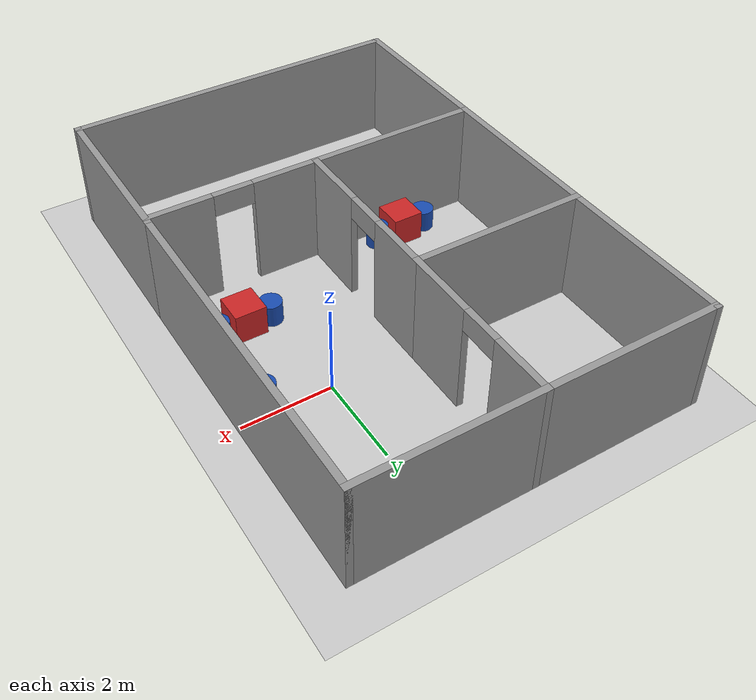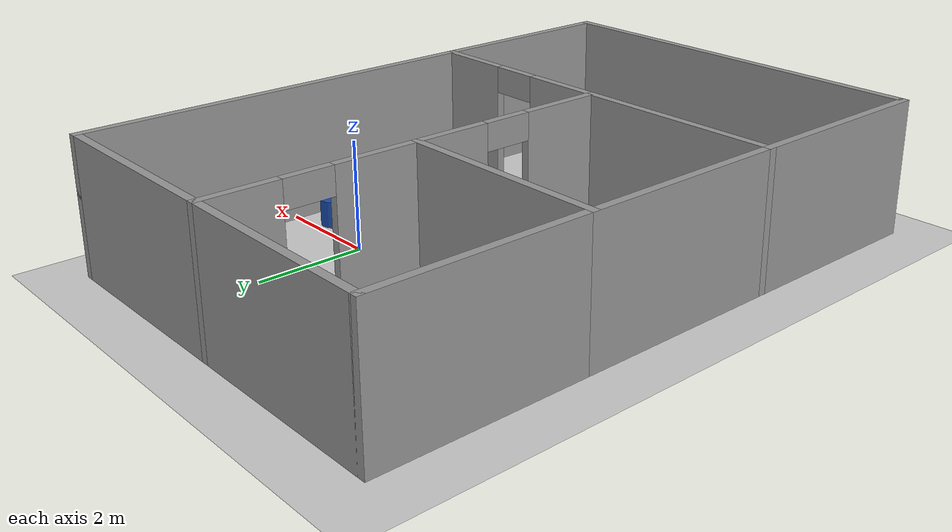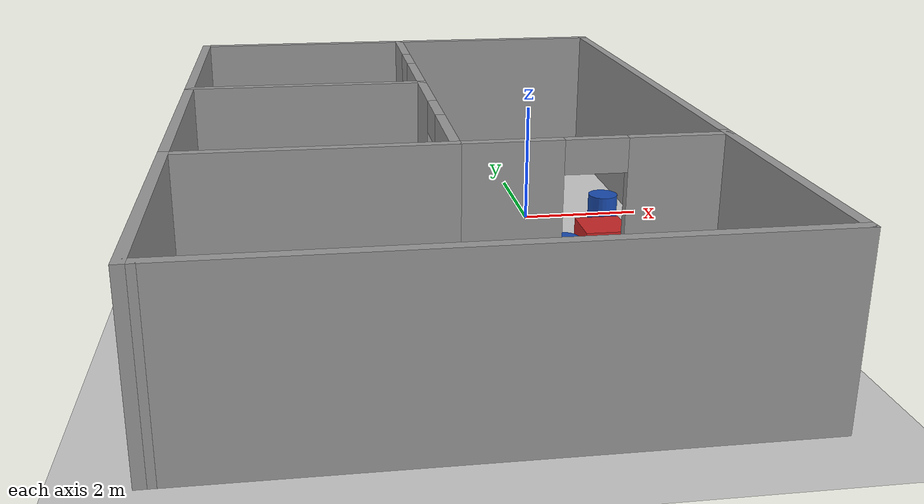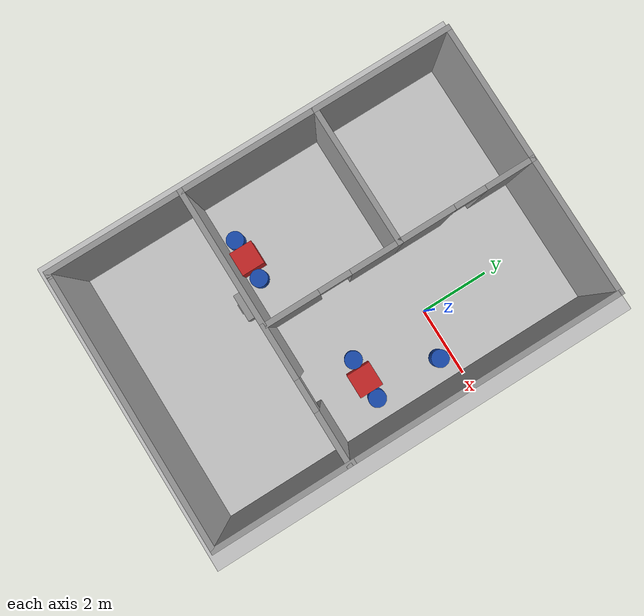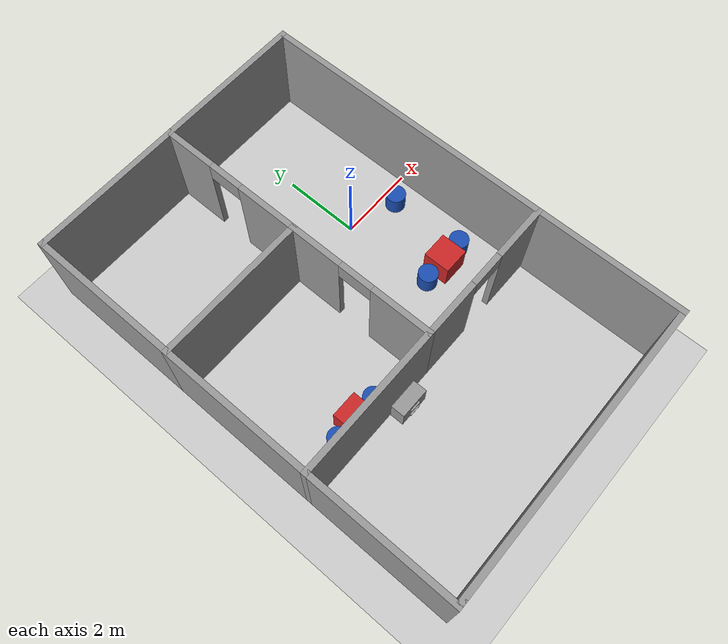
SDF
<sdf version="1.7">
 <world name="default">
  <model name="ground_plane">
   <static>1</static>
   <link name="link">
    <collision name="collision">
     <geometry><plane><normal>0 0 1</normal><size>100 100</size></plane></geometry>
     <surface>
      <contact><collide_bitmask>65535</collide_bitmask></contact>
      <friction><ode><mu>100</mu><mu2>50</mu2></ode></friction>
     </surface>
    </collision>
    <visual name="visual">
     <cast_shadows>0</cast_shadows>
     <geometry><plane><normal>0 0 1</normal><size>100 100</size></plane></geometry>
     <material>
      <script><uri>file://media/materials/scripts/gazebo.material</uri><name>Gazebo/Grey</name></script>
     </material>
    </visual>
   </link>
  </model>
  <model name="Room">
   <pose>0.816446 -1.80103 0 0 -0 0</pose>
   <link name="Wall_41">
    <collision name="Wall_41_Collision">
     <geometry><box><size>4 0.15 2.5</size></box></geometry>
     <pose>0 0 1.25 0 -0 0</pose>
    </collision>
    <visual name="Wall_41_Visual">
     <pose>0 0 1.25 0 -0 0</pose>
     <geometry><box><size>4 0.15 2.5</size></box></geometry>
     <material>
      <script><uri>file://media/materials/scripts/gazebo.material</uri><name>Gazebo/Grey</name></script>
      <ambient>1 1 1 1</ambient>
     </material>
     <meta><layer>0</layer></meta>
    </visual>
    <pose>-4.5935 1.875 0 0 -0 0</pose>
   </link>
   <link name="Wall_42">
    <pose>-2.6685 -0.05 0 0 -0 -1.5708</pose>
    <visual name="Wall_42_Visual_0">
     <pose>-1.26796 0 1.25 0 -0 0</pose>
     <geometry><box><size>1.46408 0.15 2.5</size></box></geometry>
     <material>
      <script><uri>file://media/materials/scripts/gazebo.material</uri><name>Gazebo/Grey</name></script>
      <ambient>1 1 1 1</ambient>
     </material>
     <meta><layer>0</layer></meta>
    </visual>
    <collision name="Wall_42_Collision_0">
     <geometry><box><size>1.46408 0.15 2.5</size></box></geometry>
     <pose>-1.26796 0 1.25 0 -0 0</pose>
    </collision>
    <visual name="Wall_42_Visual_1">
     <pose>1.18204 0 1.25 0 -0 0</pose>
     <geometry><box><size>1.63592 0.15 2.5</size></box></geometry>
     <material>
      <script><uri>file://media/materials/scripts/gazebo.material</uri><name>Gazebo/Grey</name></script>
      <ambient>1 1 1 1</ambient>
     </material>
     <meta><layer>0</layer></meta>
    </visual>
    <collision name="Wall_42_Collision_1">
     <geometry><box><size>1.63592 0.15 2.5</size></box></geometry>
     <pose>1.18204 0 1.25 0 -0 0</pose>
    </collision>
    <visual name="Wall_42_Visual_2">
     <pose>-0.085917 0 2.25 0 -0 0</pose>
     <geometry><box><size>0.9 0.15 0.5</size></box></geometry>
     <material>
      <script><uri>file://media/materials/scripts/gazebo.material</uri><name>Gazebo/Grey</name></script>
      <ambient>1 1 1 1</ambient>
     </material>
     <meta><layer>0</layer></meta>
    </visual>
    <collision name="Wall_42_Collision_2">
     <geometry><box><size>0.9 0.15 0.5</size></box></geometry>
     <pose>-0.085917 0 2.25 0 -0 0</pose>
    </collision>
   </link>
   <link name="Wall_43">
    <collision name="Wall_43_Collision">
     <geometry><box><size>4 0.15 2.5</size></box></geometry>
     <pose>0 0 1.25 0 -0 0</pose>
    </collision>
    <visual name="Wall_43_Visual">
     <pose>0 0 1.25 0 -0 0</pose>
     <geometry><box><size>4 0.15 2.5</size></box></geometry>
     <material>
      <script><uri>file://media/materials/scripts/gazebo.material</uri><name>Gazebo/Grey</name></script>
      <ambient>1 1 1 1</ambient>
     </material>
     <meta><layer>0</layer></meta>
    </visual>
    <pose>-4.5935 -1.975 0 0 -0 3.14159</pose>
   </link>
   <link name="Wall_44">
    <collision name="Wall_44_Collision">
     <geometry><box><size>4 0.15 2.5</size></box></geometry>
     <pose>0 0 1.25 0 -0 0</pose>
    </collision>
    <visual name="Wall_44_Visual">
     <pose>0 0 1.25 0 -0 0</pose>
     <geometry><box><size>4 0.15 2.5</size></box></geometry>
     <material>
      <script><uri>file://media/materials/scripts/gazebo.material</uri><name>Gazebo/Grey</name></script>
      <ambient>1 1 1 1</ambient>
     </material>
     <meta><layer>0</layer></meta>
    </visual>
    <pose>-6.5185 -0.05 0 0 -0 1.5708</pose>
   </link>
   <link name="Wall_49">
    <pose>-0.743497 -1.975 0 0 -0 3.14159</pose>
    <visual name="Wall_49_Visual_0">
     <pose>-1.23831 0 1.25 0 -0 0</pose>
     <geometry><box><size>1.52338 0.15 2.5</size></box></geometry>
     <material>
      <script><uri>file://media/materials/scripts/gazebo.material</uri><name>Gazebo/Grey</name></script>
      <ambient>1 1 1 1</ambient>
     </material>
     <meta><layer>0</layer></meta>
    </visual>
    <collision name="Wall_49_Collision_0">
     <geometry><box><size>1.52338 0.15 2.5</size></box></geometry>
     <pose>-1.23831 0 1.25 0 -0 0</pose>
    </collision>
    <visual name="Wall_49_Visual_1">
     <pose>1.21169 0 1.25 0 -0 0</pose>
     <geometry><box><size>1.57662 0.15 2.5</size></box></geometry>
     <material>
      <script><uri>file://media/materials/scripts/gazebo.material</uri><name>Gazebo/Grey</name></script>
      <ambient>1 1 1 1</ambient>
     </material>
     <meta><layer>0</layer></meta>
    </visual>
    <collision name="Wall_49_Collision_1">
     <geometry><box><size>1.57662 0.15 2.5</size></box></geometry>
     <pose>1.21169 0 1.25 0 -0 0</pose>
    </collision>
    <visual name="Wall_49_Visual_2">
     <pose>-0.026623 0 2.25 0 -0 0</pose>
     <geometry><box><size>0.9 0.15 0.5</size></box></geometry>
     <material>
      <script><uri>file://media/materials/scripts/gazebo.material</uri><name>Gazebo/Grey</name></script>
      <ambient>1 1 1 1</ambient>
     </material>
     <meta><layer>0</layer></meta>
    </visual>
    <collision name="Wall_49_Collision_2">
     <geometry><box><size>0.9 0.15 0.5</size></box></geometry>
     <pose>-0.026623 0 2.25 0 -0 0</pose>
    </collision>
   </link>
   <link name="Wall_51">
    <collision name="Wall_51_Collision">
     <geometry><box><size>4 0.15 2.5</size></box></geometry>
     <pose>0 0 1.25 0 -0 0</pose>
    </collision>
    <visual name="Wall_51_Visual">
     <pose>0 0 1.25 0 -0 0</pose>
     <geometry><box><size>4 0.15 2.5</size></box></geometry>
     <material>
      <script><uri>file://media/materials/scripts/gazebo.material</uri><name>Gazebo/Grey</name></script>
      <ambient>1 1 1 1</ambient>
     </material>
     <meta><layer>0</layer></meta>
    </visual>
    <pose>-6.5185 3.8 0 0 -0 1.5708</pose>
   </link>
   <link name="Wall_52">
    <collision name="Wall_52_Collision">
     <geometry><box><size>4 0.15 2.5</size></box></geometry>
     <pose>0 0 1.25 0 -0 0</pose>
    </collision>
    <visual name="Wall_52_Visual">
     <pose>0 0 1.25 0 -0 0</pose>
     <geometry><box><size>4 0.15 2.5</size></box></geometry>
     <material>
      <script><uri>file://media/materials/scripts/gazebo.material</uri><name>Gazebo/Grey</name></script>
      <ambient>1 1 1 1</ambient>
     </material>
     <meta><layer>0</layer></meta>
    </visual>
    <pose>-4.5935 5.725 0 0 -0 0</pose>
   </link>
   <link name="Wall_53">
    <pose>-2.6685 3.8 0 0 -0 -1.5708</pose>
    <visual name="Wall_53_Visual_0">
     <pose>-1.28605 0 1.25 0 -0 0</pose>
     <geometry><box><size>1.42791 0.15 2.5</size></box></geometry>
     <material>
      <script><uri>file://media/materials/scripts/gazebo.material</uri><name>Gazebo/Grey</name></script>
      <ambient>1 1 1 1</ambient>
     </material>
     <meta><layer>0</layer></meta>
    </visual>
    <collision name="Wall_53_Collision_0">
     <geometry><box><size>1.42791 0.15 2.5</size></box></geometry>
     <pose>-1.28605 0 1.25 0 -0 0</pose>
    </collision>
    <visual name="Wall_53_Visual_1">
     <pose>1.16395 0 1.25 0 -0 0</pose>
     <geometry><box><size>1.67209 0.15 2.5</size></box></geometry>
     <material>
      <script><uri>file://media/materials/scripts/gazebo.material</uri><name>Gazebo/Grey</name></script>
      <ambient>1 1 1 1</ambient>
     </material>
     <meta><layer>0</layer></meta>
    </visual>
    <collision name="Wall_53_Collision_1">
     <geometry><box><size>1.67209 0.15 2.5</size></box></geometry>
     <pose>1.16395 0 1.25 0 -0 0</pose>
    </collision>
    <visual name="Wall_53_Visual_2">
     <pose>-0.122091 0 2.25 0 -0 0</pose>
     <geometry><box><size>0.9 0.15 0.5</size></box></geometry>
     <material>
      <script><uri>file://media/materials/scripts/gazebo.material</uri><name>Gazebo/Grey</name></script>
      <ambient>1 1 1 1</ambient>
     </material>
     <meta><layer>0</layer></meta>
    </visual>
    <collision name="Wall_53_Collision_2">
     <geometry><box><size>0.9 0.15 0.5</size></box></geometry>
     <pose>-0.122091 0 2.25 0 -0 0</pose>
    </collision>
   </link>
   <link name="Wall_61">
    <collision name="Wall_61_Collision">
     <geometry><box><size>0.15 0.15 2.5</size></box></geometry>
     <pose>0 0 1.25 0 -0 0</pose>
    </collision>
    <visual name="Wall_61_Visual">
     <pose>0 0 1.25 0 -0 0</pose>
     <geometry><box><size>0.15 0.15 2.5</size></box></geometry>
     <material>
      <script><uri>file://media/materials/scripts/gazebo.material</uri><name>Gazebo/Grey</name></script>
      <ambient>1 1 1 1</ambient>
     </material>
     <meta><layer>0</layer></meta>
    </visual>
    <pose>1.1815 5.725 0 0 -0 0</pose>
   </link>
   <link name="Wall_66">
    <collision name="Wall_66_Collision">
     <geometry><box><size>0.15 0.15 2.5</size></box></geometry>
     <pose>0 0 1.25 0 -0 0</pose>
    </collision>
    <visual name="Wall_66_Visual">
     <pose>0 0 1.25 0 -0 0</pose>
     <geometry><box><size>0.15 0.15 2.5</size></box></geometry>
     <material>
      <script><uri>file://media/materials/scripts/gazebo.material</uri><name>Gazebo/Grey</name></script>
      <ambient>1 1 1 1</ambient>
     </material>
     <meta><layer>0</layer></meta>
    </visual>
    <pose>1.1815 5.725 0 0 -0 0</pose>
   </link>
   <link name="Wall_79">
    <collision name="Wall_79_Collision">
     <geometry><box><size>4 0.15 2.5</size></box></geometry>
     <pose>0 0 1.25 0 -0 0</pose>
    </collision>
    <visual name="Wall_79_Visual">
     <pose>0 0 1.25 0 -0 0</pose>
     <geometry><box><size>4 0.15 2.5</size></box></geometry>
     <material>
      <script><uri>file://media/materials/scripts/gazebo.material</uri><name>Gazebo/Grey</name></script>
      <ambient>1 1 1 1</ambient>
     </material>
     <meta><layer>0</layer></meta>
    </visual>
    <pose>-0.743497 5.725 0 0 -0 0</pose>
   </link>
   <link name="Wall_80">
    <collision name="Wall_80_Collision">
     <geometry><box><size>7.75 0.15 2.5</size></box></geometry>
     <pose>0 0 1.25 0 -0 0</pose>
    </collision>
    <visual name="Wall_80_Visual">
     <pose>0 0 1.25 0 -0 0</pose>
     <geometry><box><size>7.75 0.15 2.5</size></box></geometry>
     <material>
      <script><uri>file://media/materials/scripts/gazebo.material</uri><name>Gazebo/Grey</name></script>
      <ambient>1 1 1 1</ambient>
     </material>
     <meta><layer>0</layer></meta>
    </visual>
    <pose>1.1815 1.925 0 0 -0 -1.5708</pose>
   </link>
   <link name="Wall_82">
    <collision name="Wall_82_Collision">
     <geometry><box><size>4 0.15 2.5</size></box></geometry>
     <pose>0 0 1.25 0 -0 0</pose>
    </collision>
    <visual name="Wall_82_Visual">
     <pose>0 0 1.25 0 -0 0</pose>
     <geometry><box><size>4 0.15 2.5</size></box></geometry>
     <material>
      <script><uri>file://media/materials/scripts/gazebo.material</uri><name>Gazebo/Grey</name></script>
      <ambient>1 1 1 1</ambient>
     </material>
     <meta><layer>0</layer></meta>
    </visual>
    <pose>1.1815 -3.8 0 0 -0 -1.5708</pose>
   </link>
   <link name="Wall_89">
    <collision name="Wall_89_Collision">
     <geometry><box><size>3.9 0.15 2.5</size></box></geometry>
     <pose>0 0 1.25 0 -0 0</pose>
    </collision>
    <visual name="Wall_89_Visual">
     <pose>0 0 1.25 0 -0 0</pose>
     <geometry><box><size>3.9 0.15 2.5</size></box></geometry>
     <material>
      <script><uri>file://media/materials/scripts/gazebo.material</uri><name>Gazebo/Grey</name></script>
      <ambient>1 1 1 1</ambient>
     </material>
     <meta><layer>0</layer></meta>
    </visual>
    <pose>-6.5185 -3.85 0 0 -0 -1.5708</pose>
   </link>
   <link name="Wall_91">
    <collision name="Wall_91_Collision">
     <geometry><box><size>7.75 0.15 2.5</size></box></geometry>
     <pose>0 0 1.25 0 -0 0</pose>
    </collision>
    <visual name="Wall_91_Visual">
     <pose>0 0 1.25 0 -0 0</pose>
     <geometry><box><size>7.75 0.15 2.5</size></box></geometry>
     <material>
      <script><uri>file://media/materials/scripts/gazebo.material</uri><name>Gazebo/Grey</name></script>
      <ambient>1 1 1 1</ambient>
     </material>
     <meta><layer>0</layer></meta>
    </visual>
    <pose>-2.6185 -5.725 0 0 -0 3.14159</pose>
   </link>
   <link name="Wall_92">
    <collision name="Wall_92_Collision">
     <geometry><box><size>0.15 0.15 2.5</size></box></geometry>
     <pose>0 0 1.25 0 -0 0</pose>
    </collision>
    <visual name="Wall_92_Visual">
     <pose>0 0 1.25 0 -0 0</pose>
     <geometry><box><size>0.15 0.15 2.5</size></box></geometry>
     <material>
      <script><uri>file://media/materials/scripts/gazebo.material</uri><name>Gazebo/Grey</name></script>
      <ambient>1 1 1 1</ambient>
     </material>
     <meta><layer>0</layer></meta>
    </visual>
    <pose>-6.4185 -5.725 0 0 -0 0</pose>
   </link>
   <static>1</static>
  </model>
  <model name="Card_table">
   <link name="link">
    <inertial>
     <mass>10</mass>
     <inertia><ixx>1.66667</ixx><ixy>0</ixy><ixz>0</ixz><iyy>1.66667</iyy><iyz>0</iyz><izz>1.66667</izz></inertia>
    </inertial>
    <visual name="visual">
     <geometry><box><size>0.7 0.7 0.7</size></box></geometry>
     <material>
      <script><name>Gazebo/Red</name><uri>file://media/materials/scripts/gazebo.material</uri></script>
      <shader type="vertex"><normal_map>__default__</normal_map></shader>
      <ambient>1 0 0 1</ambient>
      <diffuse>0.9 0.7 0.7 1</diffuse>
      <specular>0.01 0.01 0.01 1</specular>
      <emissive>0 0 0 1</emissive>
     </material>
    </visual>
    <collision name="collision">
     <geometry><box><size>0.7 0.7 0.7</size></box></geometry>
     <surface>
      <friction>
       <ode><mu>1</mu><mu2>1</mu2><fdir1>0 0 0</fdir1><slip1>0</slip1><slip2>0</slip2></ode>
       <torsional>
        <coefficient>1</coefficient>
        <patch_radius>0</patch_radius>
        <surface_radius>0</surface_radius>
        <use_patch_radius>1</use_patch_radius>
        <ode><slip>0</slip></ode>
       </torsional>
      </friction>
      <bounce><restitution_coefficient>0</restitution_coefficient><threshold>1e+06</threshold></bounce>
      <contact>
       <collide_without_contact>0</collide_without_contact>
       <collide_without_contact_bitmask>1</collide_without_contact_bitmask>
       <collide_bitmask>1</collide_bitmask>
       <ode>
        <soft_cfm>0</soft_cfm>
        <soft_erp>0.2</soft_erp>
        <kp>1e+13</kp>
        <kd>1</kd>
        <max_vel>0.01</max_vel>
        <min_depth>0</min_depth>
       </ode>
       <bullet>
        <split_impulse>1</split_impulse>
        <split_impulse_penetration_threshold>-0.01</split_impulse_penetration_threshold>
        <soft_cfm>0</soft_cfm>
        <soft_erp>0.2</soft_erp>
        <kp>1e+13</kp>
        <kd>1</kd>
       </bullet>
      </contact>
     </surface>
    </collision>
   </link>
   <static>1</static>
   <pose>-3.75289 -3.37198 0.35 0 -0 0</pose>
  </model>
  <model name="chair2">
   <link name="link">
    <inertial>
     <mass>1</mass>
     <inertia><ixx>0.145833</ixx><ixy>0</ixy><ixz>0</ixz><iyy>0.145833</iyy><iyz>0</iyz><izz>0.125</izz></inertia>
    </inertial>
    <visual name="visual">
     <geometry><cylinder><radius>0.25</radius><length>0.5</length></cylinder></geometry>
     <material>
      <script><name>Gazebo/Grey</name><uri>file://media/materials/scripts/gazebo.material</uri></script>
      <shader type="pixel"><normal_map>__default__</normal_map></shader>
      <ambient>0.1 0.3 0.7 1</ambient>
      <diffuse>0.7 0.7 0.7 1</diffuse>
      <specular>0.01 0.01 0.01 1</specular>
      <emissive>0 0 0 1</emissive>
     </material>
    </visual>
    <collision name="collision">
     <geometry><cylinder><radius>0.25</radius><length>0.5</length></cylinder></geometry>
     <surface>
      <friction>
       <ode><mu>1</mu><mu2>1</mu2><fdir1>0 0 0</fdir1><slip1>0</slip1><slip2>0</slip2></ode>
       <torsional>
        <coefficient>1</coefficient>
        <patch_radius>0</patch_radius>
        <surface_radius>0</surface_radius>
        <use_patch_radius>1</use_patch_radius>
        <ode><slip>0</slip></ode>
       </torsional>
      </friction>
      <bounce><restitution_coefficient>0</restitution_coefficient><threshold>1e+06</threshold></bounce>
      <contact>
       <collide_without_contact>0</collide_without_contact>
       <collide_without_contact_bitmask>1</collide_without_contact_bitmask>
       <collide_bitmask>1</collide_bitmask>
       <ode>
        <soft_cfm>0</soft_cfm>
        <soft_erp>0.2</soft_erp>
        <kp>1e+13</kp>
        <kd>1</kd>
        <max_vel>0.01</max_vel>
        <min_depth>0</min_depth>
       </ode>
       <bullet>
        <split_impulse>1</split_impulse>
        <split_impulse_penetration_threshold>-0.01</split_impulse_penetration_threshold>
        <soft_cfm>0</soft_cfm>
        <soft_erp>0.2</soft_erp>
        <kp>1e+13</kp>
        <kd>1</kd>
       </bullet>
      </contact>
     </surface>
    </collision>
   </link>
   <static>1</static>
   <pose>-4.37303 -3.38534 0.25 0 -0 0</pose>
  </model>
  <model name="chair2_clone_0">
   <link name="link">
    <inertial>
     <mass>1</mass>
     <inertia><ixx>0.145833</ixx><ixy>0</ixy><ixz>0</ixz><iyy>0.145833</iyy><iyz>0</iyz><izz>0.125</izz></inertia>
    </inertial>
    <visual name="visual">
     <geometry><cylinder><radius>0.25</radius><length>0.5</length></cylinder></geometry>
     <material>
      <script><name>Gazebo/Grey</name><uri>file://media/materials/scripts/gazebo.material</uri></script>
      <shader type="pixel"><normal_map>__default__</normal_map></shader>
      <ambient>0.1 0.3 0.7 1</ambient>
      <diffuse>0.7 0.7 0.7 1</diffuse>
      <specular>0.01 0.01 0.01 1</specular>
      <emissive>0 0 0 1</emissive>
     </material>
    </visual>
    <collision name="collision">
     <geometry><cylinder><radius>0.25</radius><length>0.5</length></cylinder></geometry>
     <surface>
      <friction>
       <ode><mu>1</mu><mu2>1</mu2><fdir1>0 0 0</fdir1><slip1>0</slip1><slip2>0</slip2></ode>
       <torsional>
        <coefficient>1</coefficient>
        <patch_radius>0</patch_radius>
        <surface_radius>0</surface_radius>
        <use_patch_radius>1</use_patch_radius>
        <ode><slip>0</slip></ode>
       </torsional>
      </friction>
      <bounce><restitution_coefficient>0</restitution_coefficient><threshold>1e+06</threshold></bounce>
      <contact>
       <collide_without_contact>0</collide_without_contact>
       <collide_without_contact_bitmask>1</collide_without_contact_bitmask>
       <collide_bitmask>1</collide_bitmask>
       <ode>
        <soft_cfm>0</soft_cfm>
        <soft_erp>0.2</soft_erp>
        <kp>1e+13</kp>
        <kd>1</kd>
        <max_vel>0.01</max_vel>
        <min_depth>0</min_depth>
       </ode>
       <bullet>
        <split_impulse>1</split_impulse>
        <split_impulse_penetration_threshold>-0.01</split_impulse_penetration_threshold>
        <soft_cfm>0</soft_cfm>
        <soft_erp>0.2</soft_erp>
        <kp>1e+13</kp>
        <kd>1</kd>
       </bullet>
      </contact>
     </surface>
    </collision>
   </link>
   <static>1</static>
   <pose>-3.14555 -3.37656 0.25 0 -0 0</pose>
  </model>
  <model name="chair2_clone_1_clone_clone">
   <link name="link">
    <inertial>
     <mass>1</mass>
     <inertia><ixx>0.145833</ixx><ixy>0</ixy><ixz>0</ixz><iyy>0.145833</iyy><iyz>0</iyz><izz>0.125</izz></inertia>
    </inertial>
    <visual name="visual">
     <geometry><cylinder><radius>0.25</radius><length>0.5</length></cylinder></geometry>
     <material>
      <script><name>Gazebo/Grey</name><uri>file://media/materials/scripts/gazebo.material</uri></script>
      <shader type="pixel"><normal_map>__default__</normal_map></shader>
      <ambient>0.1 0.3 0.7 1</ambient>
      <diffuse>0.7 0.7 0.7 1</diffuse>
      <specular>0.01 0.01 0.01 1</specular>
      <emissive>0 0 0 1</emissive>
     </material>
    </visual>
    <collision name="collision">
     <geometry><cylinder><radius>0.25</radius><length>0.5</length></cylinder></geometry>
     <surface>
      <friction>
       <ode><mu>1</mu><mu2>1</mu2><fdir1>0 0 0</fdir1><slip1>0</slip1><slip2>0</slip2></ode>
       <torsional>
        <coefficient>1</coefficient>
        <patch_radius>0</patch_radius>
        <surface_radius>0</surface_radius>
        <use_patch_radius>1</use_patch_radius>
        <ode><slip>0</slip></ode>
       </torsional>
      </friction>
      <bounce><restitution_coefficient>0</restitution_coefficient><threshold>1e+06</threshold></bounce>
      <contact>
       <collide_without_contact>0</collide_without_contact>
       <collide_without_contact_bitmask>1</collide_without_contact_bitmask>
       <collide_bitmask>1</collide_bitmask>
       <ode>
        <soft_cfm>0</soft_cfm>
        <soft_erp>0.2</soft_erp>
        <kp>1e+13</kp>
        <kd>1</kd>
        <max_vel>0.01</max_vel>
        <min_depth>0</min_depth>
       </ode>
       <bullet>
        <split_impulse>1</split_impulse>
        <split_impulse_penetration_threshold>-0.01</split_impulse_penetration_threshold>
        <soft_cfm>0</soft_cfm>
        <soft_erp>0.2</soft_erp>
        <kp>1e+13</kp>
        <kd>1</kd>
       </bullet>
      </contact>
     </surface>
    </collision>
   </link>
   <static>1</static>
   <pose>1.28512 -0.375706 0.25 0 -0 0</pose>
  </model>
  <model name="Card_table_clone_clone_1">
   <link name="link">
    <inertial>
     <mass>10</mass>
     <inertia><ixx>1.66667</ixx><ixy>0</ixy><ixz>0</ixz><iyy>1.66667</iyy><iyz>0</iyz><izz>1.66667</izz></inertia>
    </inertial>
    <visual name="visual">
     <geometry><box><size>0.7 0.7 0.7</size></box></geometry>
     <material>
      <script><name>Gazebo/Red</name><uri>file://media/materials/scripts/gazebo.material</uri></script>
      <shader type="vertex"><normal_map>__default__</normal_map></shader>
      <ambient>1 0 0 1</ambient>
      <diffuse>0.9 0.7 0.7 1</diffuse>
      <specular>0.01 0.01 0.01 1</specular>
      <emissive>0 0 0 1</emissive>
     </material>
    </visual>
    <collision name="collision">
     <geometry><box><size>0.7 0.7 0.7</size></box></geometry>
     <surface>
      <friction>
       <ode><mu>1</mu><mu2>1</mu2><fdir1>0 0 0</fdir1><slip1>0</slip1><slip2>0</slip2></ode>
       <torsional>
        <coefficient>1</coefficient>
        <patch_radius>0</patch_radius>
        <surface_radius>0</surface_radius>
        <use_patch_radius>1</use_patch_radius>
        <ode><slip>0</slip></ode>
       </torsional>
      </friction>
      <bounce><restitution_coefficient>0</restitution_coefficient><threshold>1e+06</threshold></bounce>
      <contact>
       <collide_without_contact>0</collide_without_contact>
       <collide_without_contact_bitmask>1</collide_without_contact_bitmask>
       <collide_bitmask>1</collide_bitmask>
       <ode>
        <soft_cfm>0</soft_cfm>
        <soft_erp>0.2</soft_erp>
        <kp>1e+13</kp>
        <kd>1</kd>
        <max_vel>0.01</max_vel>
        <min_depth>0</min_depth>
       </ode>
       <bullet>
        <split_impulse>1</split_impulse>
        <split_impulse_penetration_threshold>-0.01</split_impulse_penetration_threshold>
        <soft_cfm>0</soft_cfm>
        <soft_erp>0.2</soft_erp>
        <kp>1e+13</kp>
        <kd>1</kd>
       </bullet>
      </contact>
     </surface>
    </collision>
   </link>
   <static>1</static>
   <pose>0.679929 -2.40022 0.35 0 -0 0</pose>
  </model>
  <model name="chair2_clone_1_clone_clone_clone_0">
   <link name="link">
    <inertial>
     <mass>1</mass>
     <inertia><ixx>0.145833</ixx><ixy>0</ixy><ixz>0</ixz><iyy>0.145833</iyy><iyz>0</iyz><izz>0.125</izz></inertia>
    </inertial>
    <visual name="visual">
     <geometry><cylinder><radius>0.25</radius><length>0.5</length></cylinder></geometry>
     <material>
      <script><name>Gazebo/Grey</name><uri>file://media/materials/scripts/gazebo.material</uri></script>
      <shader type="pixel"><normal_map>__default__</normal_map></shader>
      <ambient>0.1 0.3 0.7 1</ambient>
      <diffuse>0.7 0.7 0.7 1</diffuse>
      <specular>0.01 0.01 0.01 1</specular>
      <emissive>0 0 0 1</emissive>
     </material>
    </visual>
    <collision name="collision">
     <geometry><cylinder><radius>0.25</radius><length>0.5</length></cylinder></geometry>
     <surface>
      <friction>
       <ode><mu>1</mu><mu2>1</mu2><fdir1>0 0 0</fdir1><slip1>0</slip1><slip2>0</slip2></ode>
       <torsional>
        <coefficient>1</coefficient>
        <patch_radius>0</patch_radius>
        <surface_radius>0</surface_radius>
        <use_patch_radius>1</use_patch_radius>
        <ode><slip>0</slip></ode>
       </torsional>
      </friction>
      <bounce><restitution_coefficient>0</restitution_coefficient><threshold>1e+06</threshold></bounce>
      <contact>
       <collide_without_contact>0</collide_without_contact>
       <collide_without_contact_bitmask>1</collide_without_contact_bitmask>
       <collide_bitmask>1</collide_bitmask>
       <ode>
        <soft_cfm>0</soft_cfm>
        <soft_erp>0.2</soft_erp>
        <kp>1e+13</kp>
        <kd>1</kd>
        <max_vel>0.01</max_vel>
        <min_depth>0</min_depth>
       </ode>
       <bullet>
        <split_impulse>1</split_impulse>
        <split_impulse_penetration_threshold>-0.01</split_impulse_penetration_threshold>
        <soft_cfm>0</soft_cfm>
        <soft_erp>0.2</soft_erp>
        <kp>1e+13</kp>
        <kd>1</kd>
       </bullet>
      </contact>
     </surface>
    </collision>
   </link>
   <static>1</static>
   <pose>0.083371 -2.3746 0.25 0 -0 0</pose>
  </model>
  <model name="Drawer_clone">
   <link name="link">
    <inertial>
     <mass>1</mass>
     <inertia>
      <ixx>0.166667</ixx>
      <ixy>0</ixy>
      <ixz>0</ixz>
      <iyy>0.166667</iyy>
      <iyz>0</iyz>
      <izz>0.166667</izz>
     </inertia>
    </inertial>
    <visual name="visual">
     <geometry><box><size>0.4 0.8 0.6</size></box></geometry>
     <material>
      <script><name>Gazebo/Grey</name><uri>file://media/materials/scripts/gazebo.material</uri></script>
      <shader type="pixel"><normal_map>__default__</normal_map></shader>
      <ambient>0.3 0.3 0.3 1</ambient>
      <diffuse>1 1 1 1</diffuse>
      <specular>0.01 0.01 0.01 1</specular>
      <emissive>0 0 0 1</emissive>
     </material>
    </visual>
    <collision name="collision">
     <geometry><box><size>0.4 0.8 0.6</size></box></geometry>
     <surface>
      <friction>
       <ode><mu>1</mu><mu2>1</mu2><fdir1>0 0 0</fdir1><slip1>0</slip1><slip2>0</slip2></ode>
       <torsional>
        <coefficient>1</coefficient>
        <patch_radius>0</patch_radius>
        <surface_radius>0</surface_radius>
        <use_patch_radius>1</use_patch_radius>
        <ode><slip>0</slip></ode>
       </torsional>
      </friction>
      <bounce><restitution_coefficient>0</restitution_coefficient><threshold>1e+06</threshold></bounce>
      <contact>
       <collide_without_contact>0</collide_without_contact>
       <collide_without_contact_bitmask>1</collide_without_contact_bitmask>
       <collide_bitmask>1</collide_bitmask>
       <ode>
        <soft_cfm>0</soft_cfm>
        <soft_erp>0.2</soft_erp>
        <kp>1e+13</kp>
        <kd>1</kd>
        <max_vel>0.01</max_vel>
        <min_depth>0</min_depth>
       </ode>
       <bullet>
        <split_impulse>1</split_impulse>
        <split_impulse_penetration_threshold>-0.01</split_impulse_penetration_threshold>
        <soft_cfm>0</soft_cfm>
        <soft_erp>0.2</soft_erp>
        <kp>1e+13</kp>
        <kd>1</kd>
       </bullet>
      </contact>
     </surface>
    </collision>
   </link>
   <link name="link_26">
    <inertial>
     <mass>1</mass>
     <inertia>
      <ixx>0.166667</ixx>
      <ixy>0</ixy>
      <ixz>0</ixz>
      <iyy>0.166667</iyy>
      <iyz>0</iyz>
      <izz>0.166667</izz>
     </inertia>
    </inertial>
    <pose>-0.22 0 0.15 0 -0 0</pose>
    <visual name="visual">
     <geometry><box><size>0.04 0.3 0.02</size></box></geometry>
     <material>
      <lighting>1</lighting>
      <script><uri>file://media/materials/scripts/gazebo.material</uri><name>Gazebo/Grey</name></script>
      <shader type="pixel"><normal_map>__default__</normal_map></shader>
      <ambient>0.3 0.3 0.3 1</ambient>
      <diffuse>0.7 0.7 0.7 1</diffuse>
      <specular>0.01 0.01 0.01 1</specular>
      <emissive>0 0 0 1</emissive>
     </material>
    </visual>
    <collision name="collision">
     <geometry><box><size>0.04 0.3 0.02</size></box></geometry>
     <surface>
      <friction>
       <ode><mu>1</mu><mu2>1</mu2><fdir1>0 0 0</fdir1><slip1>0</slip1><slip2>0</slip2></ode>
       <torsional>
        <coefficient>1</coefficient>
        <patch_radius>0</patch_radius>
        <surface_radius>0</surface_radius>
        <use_patch_radius>1</use_patch_radius>
        <ode><slip>0</slip></ode>
       </torsional>
      </friction>
      <bounce><restitution_coefficient>0</restitution_coefficient><threshold>1e+06</threshold></bounce>
      <contact>
       <collide_without_contact>0</collide_without_contact>
       <collide_without_contact_bitmask>1</collide_without_contact_bitmask>
       <collide_bitmask>1</collide_bitmask>
       <ode>
        <soft_cfm>0</soft_cfm>
        <soft_erp>0.2</soft_erp>
        <kp>1e+13</kp>
        <kd>1</kd>
        <max_vel>0.01</max_vel>
        <min_depth>0</min_depth>
       </ode>
       <bullet>
        <split_impulse>1</split_impulse>
        <split_impulse_penetration_threshold>-0.01</split_impulse_penetration_threshold>
        <soft_cfm>0</soft_cfm>
        <soft_erp>0.2</soft_erp>
        <kp>1e+13</kp>
        <kd>1</kd>
       </bullet>
      </contact>
     </surface>
    </collision>
   </link>
   <link name="link_26_clone">
    <inertial>
     <mass>1</mass>
     <inertia>
      <ixx>0.166667</ixx>
      <ixy>0</ixy>
      <ixz>0</ixz>
      <iyy>0.166667</iyy>
      <iyz>0</iyz>
      <izz>0.166667</izz>
     </inertia>
    </inertial>
    <pose>-0.22 0 -0.15 0 -0 0</pose>
    <visual name="visual">
     <geometry><box><size>0.04 0.3 0.02</size></box></geometry>
     <material>
      <lighting>1</lighting>
      <script><uri>file://media/materials/scripts/gazebo.material</uri><name>Gazebo/Grey</name></script>
      <shader type="pixel"><normal_map>__default__</normal_map></shader>
      <ambient>0.3 0.3 0.3 1</ambient>
      <diffuse>0.7 0.7 0.7 1</diffuse>
      <specular>0.01 0.01 0.01 1</specular>
      <emissive>0 0 0 1</emissive>
     </material>
    </visual>
    <collision name="collision">
     <geometry><box><size>0.04 0.3 0.02</size></box></geometry>
     <surface>
      <friction>
       <ode><mu>1</mu><mu2>1</mu2><fdir1>0 0 0</fdir1><slip1>0</slip1><slip2>0</slip2></ode>
       <torsional>
        <coefficient>1</coefficient>
        <patch_radius>0</patch_radius>
        <surface_radius>0</surface_radius>
        <use_patch_radius>1</use_patch_radius>
        <ode><slip>0</slip></ode>
       </torsional>
      </friction>
      <bounce><restitution_coefficient>0</restitution_coefficient><threshold>1e+06</threshold></bounce>
      <contact>
       <collide_without_contact>0</collide_without_contact>
       <collide_without_contact_bitmask>1</collide_without_contact_bitmask>
       <collide_bitmask>1</collide_bitmask>
       <ode>
        <soft_cfm>0</soft_cfm>
        <soft_erp>0.2</soft_erp>
        <kp>1e+13</kp>
        <kd>1</kd>
        <max_vel>0.01</max_vel>
        <min_depth>0</min_depth>
       </ode>
       <bullet>
        <split_impulse>1</split_impulse>
        <split_impulse_penetration_threshold>-0.01</split_impulse_penetration_threshold>
        <soft_cfm>0</soft_cfm>
        <soft_erp>0.2</soft_erp>
        <kp>1e+13</kp>
        <kd>1</kd>
       </bullet>
      </contact>
     </surface>
    </collision>
   </link>
   <static>1</static>
   <pose>-2.68996 -4.01271 0.3 0 -0 1.57</pose>
  </model>
  <model name="chair2_clone_1_clone_clone_clone_0_clone">
   <link name="link">
    <inertial>
     <mass>1</mass>
     <inertia><ixx>0.145833</ixx><ixy>0</ixy><ixz>0</ixz><iyy>0.145833</iyy><iyz>0</iyz><izz>0.125</izz></inertia>
    </inertial>
    <visual name="visual">
     <geometry><cylinder><radius>0.25</radius><length>0.5</length></cylinder></geometry>
     <material>
      <script><name>Gazebo/Grey</name><uri>file://media/materials/scripts/gazebo.material</uri></script>
      <shader type="pixel"><normal_map>__default__</normal_map></shader>
      <ambient>0.1 0.3 0.7 1</ambient>
      <diffuse>0.7 0.7 0.7 1</diffuse>
      <specular>0.01 0.01 0.01 1</specular>
      <emissive>0 0 0 1</emissive>
     </material>
    </visual>
    <collision name="collision">
     <geometry><cylinder><radius>0.25</radius><length>0.5</length></cylinder></geometry>
     <surface>
      <friction>
       <ode><mu>1</mu><mu2>1</mu2><fdir1>0 0 0</fdir1><slip1>0</slip1><slip2>0</slip2></ode>
       <torsional>
        <coefficient>1</coefficient>
        <patch_radius>0</patch_radius>
        <surface_radius>0</surface_radius>
        <use_patch_radius>1</use_patch_radius>
        <ode><slip>0</slip></ode>
       </torsional>
      </friction>
      <bounce><restitution_coefficient>0</restitution_coefficient><threshold>1e+06</threshold></bounce>
      <contact>
       <collide_without_contact>0</collide_without_contact>
       <collide_without_contact_bitmask>1</collide_without_contact_bitmask>
       <collide_bitmask>1</collide_bitmask>
       <ode>
        <soft_cfm>0</soft_cfm>
        <soft_erp>0.2</soft_erp>
        <kp>1e+13</kp>
        <kd>1</kd>
        <max_vel>0.01</max_vel>
        <min_depth>0</min_depth>
       </ode>
       <bullet>
        <split_impulse>1</split_impulse>
        <split_impulse_penetration_threshold>-0.01</split_impulse_penetration_threshold>
        <soft_cfm>0</soft_cfm>
        <soft_erp>0.2</soft_erp>
        <kp>1e+13</kp>
        <kd>1</kd>
       </bullet>
      </contact>
     </surface>
    </collision>
   </link>
   <static>1</static>
   <pose>1.288 -2.37202 0.25 0 -0 0</pose>
  </model>
 </world>
</sdf>
